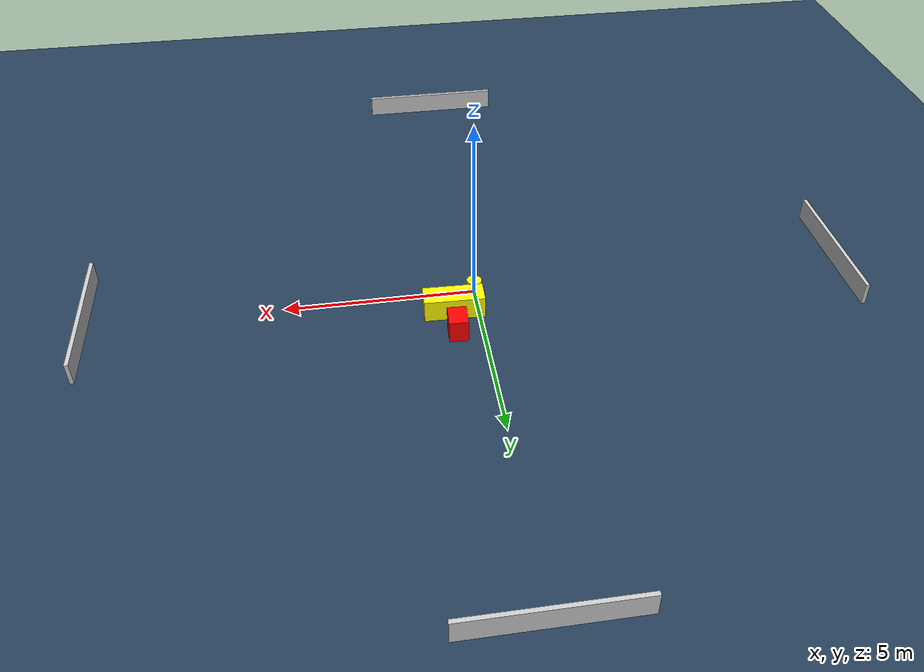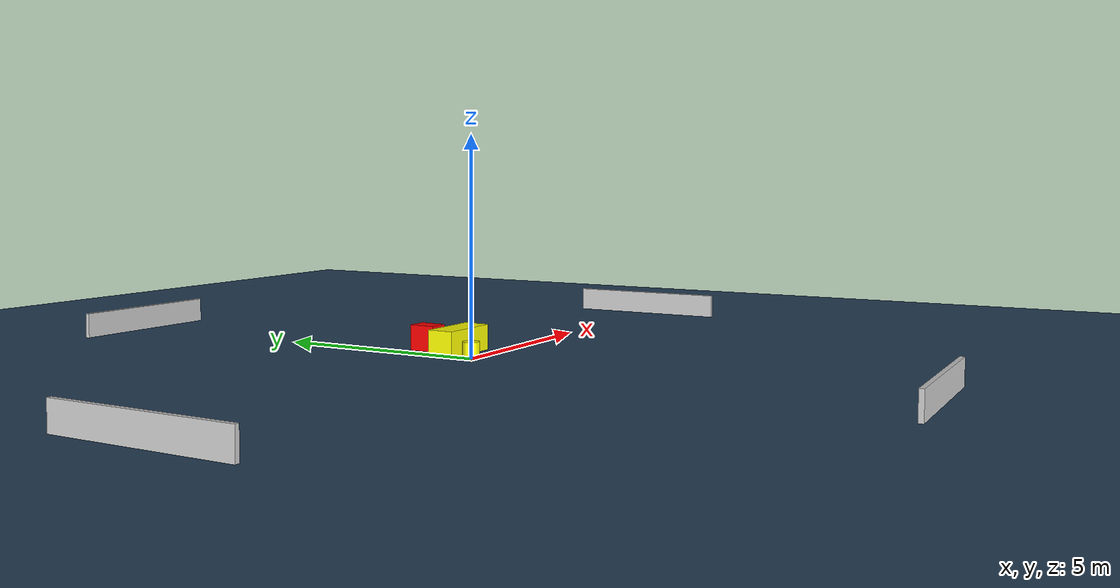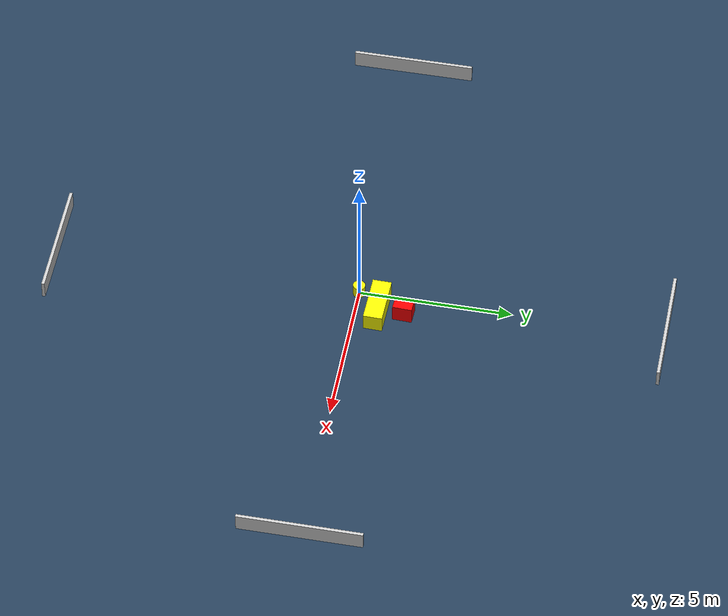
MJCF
<?xml version="1.0" ?>
<mujoco model="generated_environment">
  <option timestep="0.01" integrator="RK4" cone="elliptic"/>
  <default>
    <geom density="1"/>
  </default>
  <asset>
    <texture builtin="gradient" height="3072" name="skybox" rgb1="0.3 0.5 0.7" rgb2="0 0 0" type="skybox" width="512"/>
    <texture builtin="checker" height="300" name="groundplane" rgb1="0.2 0.3 0.4" rgb2="0.1 0.2 0.3" type="2d" width="300"/>
    <material name="groundplane" reflectance="0.2" texrepeat="5 5" texture="groundplane"/>
  </asset>
  <worldbody>
    <light dir="0 0 -1" directional="true" pos="0 0 1.5"/>
    <geom condim="3" friction="0.5 0.005 0.001" material="groundplane" name="floor" pos="0 0 0" size="0 0 0.05" type="plane"/>
    <body name="walls">
      <geom name="wall_1" condim="4" pos="-10.0 0.0 0.3" rgba="0.800000011920929 0.800000011920929 0.800000011920929 1.0" size="0.05 2.0 0.3" type="box"/>
      <geom name="wall_2" condim="4" pos="10.0 0.0 0.3" rgba="0.800000011920929 0.800000011920929 0.800000011920929 1.0" size="0.05 2.0 0.3" type="box"/>
      <geom name="wall_3" condim="4" pos="0.0 -10.0 0.3" rgba="0.800000011920929 0.800000011920929 0.800000011920929 1.0" size="2.0 0.05 0.3" type="box"/>
      <geom name="wall_4" condim="4" pos="0.0 10.0 0.3" rgba="0.800000011920929 0.800000011920929 0.800000011920929 1.0" size="2.0 0.05 0.3" type="box"/>
    </body>
    <body name="robot">
      <joint name="joint_x" type="slide" pos="0 0 0" axis="1 0 0"/>
      <joint name="joint_y" type="slide" pos="0 0 0" axis="0 1 0"/>
      <geom name="robot" type="cylinder" pos="0.0 0.0 0.2" size="0.2 0.2 0.0" mass="5.0" friction="1.0 0.005 0.0001" condim="4" rgba="1.0 1.0 0.0 1.0"/>
    </body>
    <body name="obstacle_1_movable">
      <geom name="obstacle_1_movable" condim="4" pos="0.641298685908463 0.7136934689961492 0.3" euler="0 0 358.63800737970934" friction="0.0 0.005 0.001" rgba="1.0 1.0 0.0 1.0" size="0.7826509204076175 0.30897194880179146 0.3" type="box" mass="0.1"/>
      <joint type="free"/>
    </body>
    <body name="obstacle_2_static">
      <geom name="obstacle_2_static" condim="4" pos="0.6519671848424415 1.5709466831508276 0.3" euler="0 0 267.6402701777208" friction="0.0 0.005 0.001" rgba="1.0 0.0 0.0 1.0" size="0.31549162676331294 0.24508781240137334 0.3" type="box"/>
    </body>
  </worldbody>
  <actuator>
    <motor name="actuator_x" joint="joint_x" gear="1" ctrlrange="-1 1"/>
    <motor name="actuator_y" joint="joint_y" gear="1" ctrlrange="-1 1"/>
  </actuator>
</mujoco>
